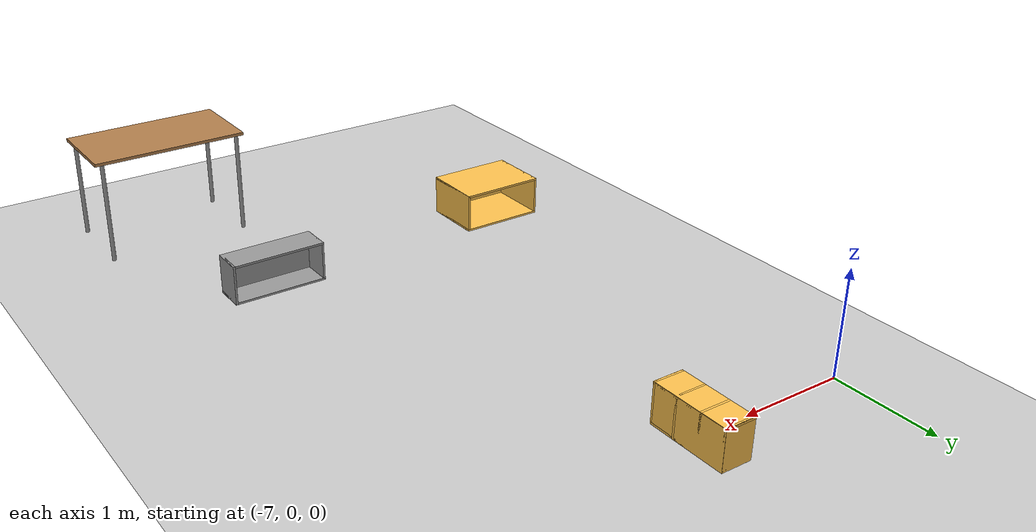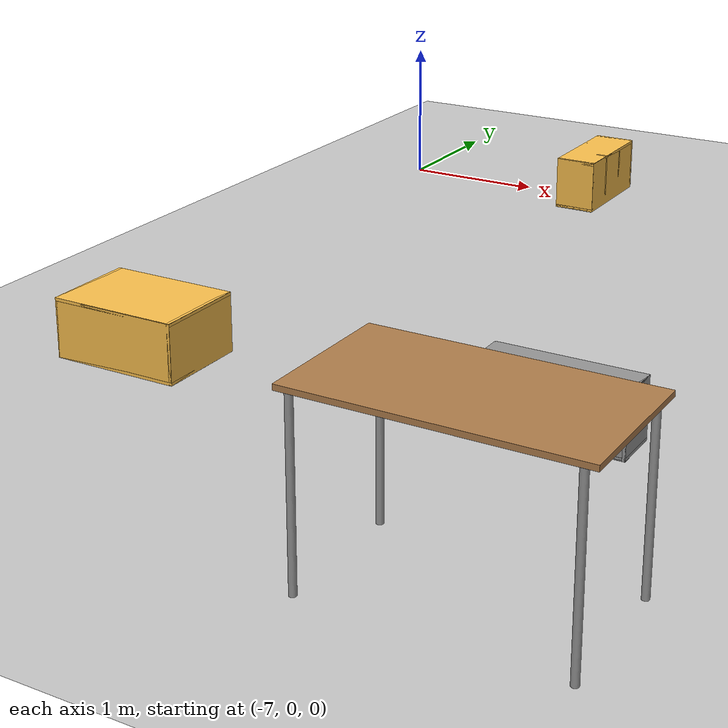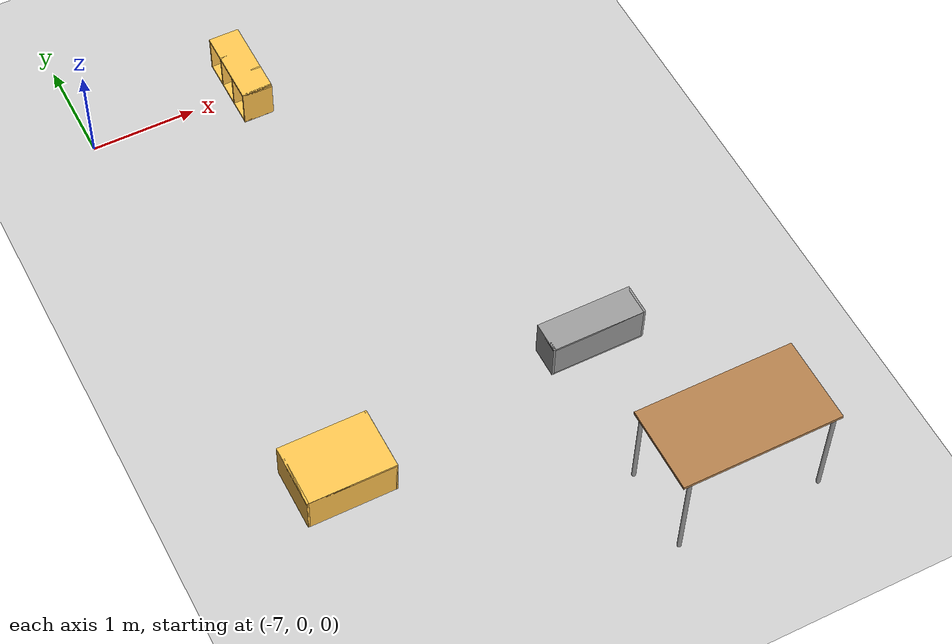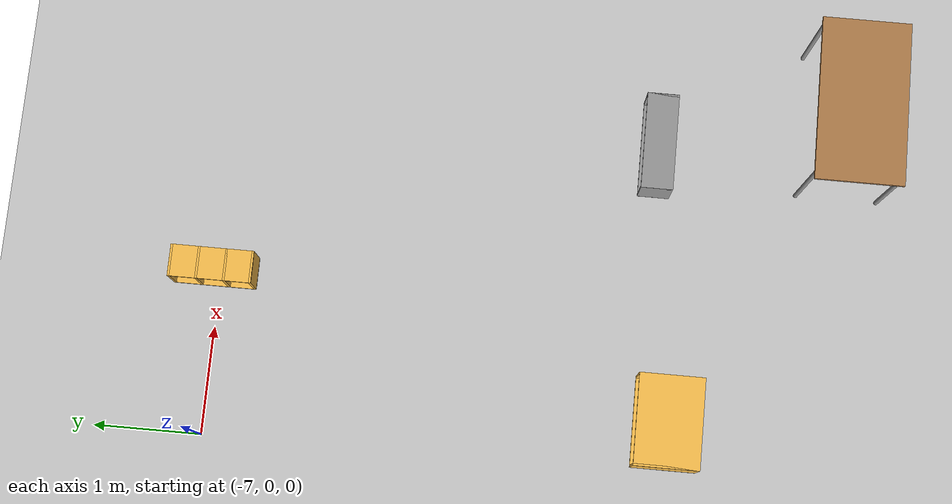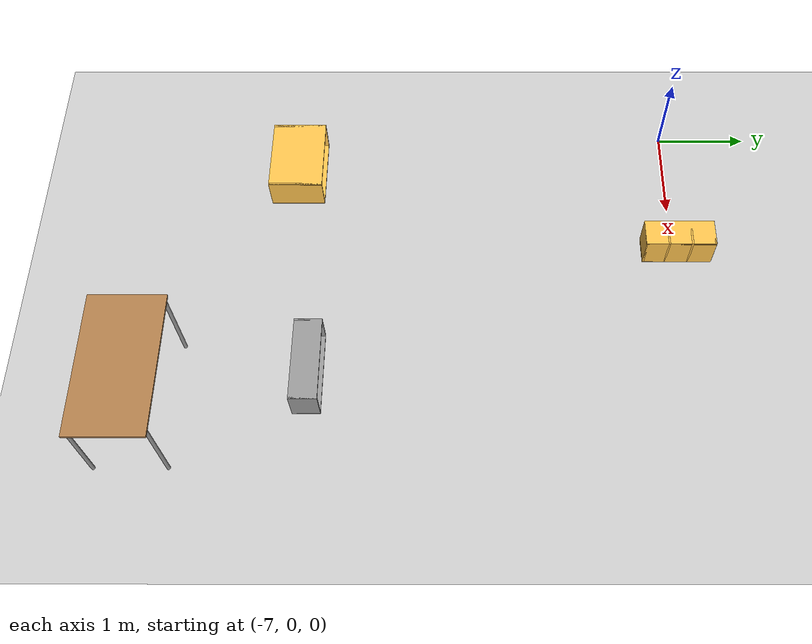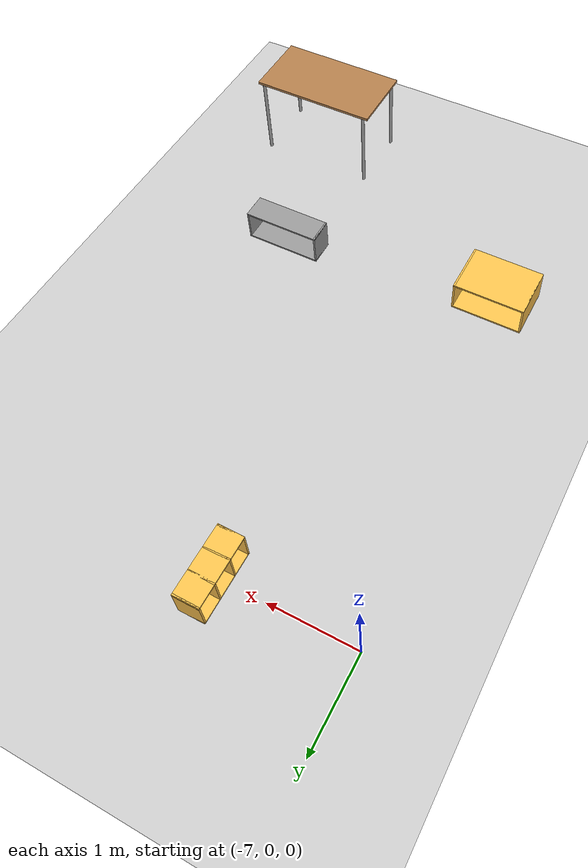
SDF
<sdf version="1.7">
 <world name="default">
  <model name="ground_plane">
   <static>1</static>
   <link name="link">
    <collision name="collision">
     <geometry><plane><normal>0 0 1</normal><size>100 100</size></plane></geometry>
     <surface>
      <contact><collide_bitmask>65535</collide_bitmask></contact>
      <friction><ode><mu>100</mu><mu2>50</mu2></ode></friction>
     </surface>
    </collision>
    <visual name="visual">
     <cast_shadows>0</cast_shadows>
     <geometry><plane><normal>0 0 1</normal><size>100 100</size></plane></geometry>
     <material>
      <script><uri>file://media/materials/scripts/gazebo.material</uri><name>Gazebo/Grey</name></script>
     </material>
    </visual>
   </link>
  </model>
  <model name="Wall_Cabinet_36x15W">
   <link name="Wall_0">
    <pose>0 0 0.01 0 -0 0</pose>
    <inertial>
     <mass>1.9796</mass>
     <inertia><ixx>0.0145</ixx><iyy>0.1511</iyy><izz>0.1367</izz><ixy>0</ixy><ixz>0</ixz><iyz>0</iyz></inertia>
    </inertial>
    <collision name="Wall_0_Collision"><geometry><box><size>0.91 0.296 0.02</size></box></geometry></collision>
    <visual name="Wall_0_Visual">
     <geometry><box><size>0.91 0.296 0.02</size></box></geometry>
     <material>
      <script><uri>file://media/materials/scripts/gazebo.material</uri><name>Gazebo/Grey</name></script>
      <ambient>1 1 1 1</ambient>
     </material>
    </visual>
   </link>
   <joint name="0_2" type="fixed">
    <pose>-0.455 0 0 0 -0 0</pose>
    <parent>Wall_2</parent>
    <child>Wall_0</child>
    <axis><xyz>0 0 1</xyz><limit><lower>-1e+16</lower><upper>1e+16</upper></limit></axis>
   </joint>
   <joint name="0_4" type="fixed">
    <pose>0.455 0 0 0 -0 0</pose>
    <parent>Wall_4</parent>
    <child>Wall_0</child>
    <axis><xyz>0 0 1</xyz><limit><lower>-1e+16</lower><upper>1e+16</upper></limit></axis>
   </joint>
   <joint name="0_8" type="fixed">
    <pose>0 -0.148 0 0 -0 0</pose>
    <parent>Wall_8</parent>
    <child>Wall_0</child>
    <axis><xyz>0 0 1</xyz><limit><lower>-1e+16</lower><upper>1e+16</upper></limit></axis>
   </joint>
   <link name="Wall_2">
    <pose>-0.445 0 0.192 0 -0 0</pose>
    <inertial>
     <mass>0.8353</mass>
     <inertia><ixx>0.0061</ixx><iyy>0.0164</iyy><izz>0.0103</izz><ixy>0</ixy><ixz>0</ixz><iyz>0</iyz></inertia>
    </inertial>
    <collision name="Wall_2_Collision"><geometry><box><size>0.02 0.296 0.384</size></box></geometry></collision>
    <visual name="Wall_2_Visual">
     <geometry><box><size>0.02 0.296 0.384</size></box></geometry>
     <material>
      <script><uri>file://media/materials/scripts/gazebo.material</uri><name>Gazebo/Grey</name></script>
      <ambient>1 1 1 1</ambient>
     </material>
    </visual>
   </link>
   <link name="Wall_4">
    <pose>0.445 0 0.192 0 -0 0</pose>
    <inertial>
     <mass>0.8353</mass>
     <inertia><ixx>0.0061</ixx><iyy>0.0164</iyy><izz>0.0103</izz><ixy>0</ixy><ixz>0</ixz><iyz>0</iyz></inertia>
    </inertial>
    <collision name="Wall_4_Collision"><geometry><box><size>0.02 0.296 0.384</size></box></geometry></collision>
    <visual name="Wall_4_Visual">
     <geometry><box><size>0.02 0.296 0.384</size></box></geometry>
     <material>
      <script><uri>file://media/materials/scripts/gazebo.material</uri><name>Gazebo/Grey</name></script>
      <ambient>1 1 1 1</ambient>
     </material>
    </visual>
   </link>
   <link name="Wall_6">
    <pose>0 0 0.374 0 -0 0</pose>
    <inertial>
     <mass>1.9796</mass>
     <inertia><ixx>0.0145</ixx><iyy>0.1511</iyy><izz>0.1367</izz><ixy>0</ixy><ixz>0</ixz><iyz>0</iyz></inertia>
    </inertial>
    <collision name="Wall_6_Collision"><geometry><box><size>0.91 0.296 0.02</size></box></geometry></collision>
    <visual name="Wall_6_Visual">
     <geometry><box><size>0.91 0.296 0.02</size></box></geometry>
     <material>
      <script><uri>file://media/materials/scripts/gazebo.material</uri><name>Gazebo/Grey</name></script>
      <ambient>1 1 1 1</ambient>
     </material>
    </visual>
   </link>
   <joint name="6_2" type="fixed">
    <pose>-0.455 0 0 0 -0 0</pose>
    <parent>Wall_2</parent>
    <child>Wall_6</child>
    <axis><xyz>0 0 1</xyz><limit><lower>-1e+16</lower><upper>1e+16</upper></limit></axis>
   </joint>
   <joint name="6_4" type="fixed">
    <pose>0.455 0 0 0 -0 0</pose>
    <parent>Wall_4</parent>
    <child>Wall_6</child>
    <axis><xyz>0 0 1</xyz><limit><lower>-1e+16</lower><upper>1e+16</upper></limit></axis>
   </joint>
   <joint name="6_8" type="fixed">
    <pose>0 -0.148 0 0 -0 0</pose>
    <parent>Wall_8</parent>
    <child>Wall_6</child>
    <axis><xyz>0 0 1</xyz><limit><lower>-1e+16</lower><upper>1e+16</upper></limit></axis>
   </joint>
   <link name="Wall_8">
    <pose>0 -0.138 0.19 0 -0 0</pose>
    <inertial>
     <mass>2.5302</mass>
     <inertia><ixx>0.0305</ixx><iyy>0.1732</iyy><izz>0.2035</izz><ixy>0</ixy><ixz>0</ixz><iyz>0</iyz></inertia>
    </inertial>
    <collision name="Wall_8_Collision"><geometry><box><size>0.906 0.02 0.38</size></box></geometry></collision>
    <visual name="Wall_8_Visual">
     <geometry><box><size>0.906 0.02 0.38</size></box></geometry>
     <material>
      <script><uri>file://media/materials/scripts/gazebo.material</uri><name>Gazebo/Grey</name></script>
      <ambient>1 1 1 1</ambient>
     </material>
    </visual>
   </link>
   <joint name="8_2" type="fixed">
    <pose>-0.453 0 0 0 -0 0</pose>
    <parent>Wall_2</parent>
    <child>Wall_8</child>
    <axis><xyz>0 1 0</xyz><limit><lower>-1e+16</lower><upper>1e+16</upper></limit></axis>
   </joint>
   <joint name="8_4" type="fixed">
    <pose>0.453 0 0 0 -0 0</pose>
    <parent>Wall_4</parent>
    <child>Wall_8</child>
    <axis><xyz>0 1 0</xyz><limit><lower>-1e+16</lower><upper>1e+16</upper></limit></axis>
   </joint>
   <static>1</static>
   <pose>-3.94097 -3.9701 0 0 -0 0</pose>
  </model>
  <model name="Wall_Cabinet_15x30">
   <pose>-5.46523 0.041721 0 0 -0 0</pose>
   <link name="Wall_0">
    <pose>0 0.374 0.192 0 -0 0</pose>
    <inertial>
     <mass>0.9882</mass>
     <inertia><ixx>0.0072</ixx><iyy>0.0194</iyy><izz>0.0122</izz><ixy>0</ixy><ixz>0</ixz><iyz>0</iyz></inertia>
    </inertial>
    <collision name="Wall_0_Collision"><geometry><box><size>0.296 0.02 0.384</size></box></geometry></collision>
    <visual name="Wall_0_Visual">
     <geometry><box><size>0.296 0.02 0.384</size></box></geometry>
     <material>
      <script><uri>file://media/materials/scripts/gazebo.material</uri><name>Gazebo/Grey</name></script>
      <ambient>1 0.764706 0.305882 1</ambient>
     </material>
    </visual>
   </link>
   <joint name="0_2" type="fixed">
    <pose>0 0 0.192 0 -0 0</pose>
    <parent>Wall_2</parent>
    <child>Wall_0</child>
    <axis><xyz>0 0 1</xyz><limit><lower>-1e+16</lower><upper>1e+16</upper></limit></axis>
   </joint>
   <joint name="0_4" type="fixed">
    <pose>0 0 -0.192 0 -0 0</pose>
    <parent>Wall_4</parent>
    <child>Wall_0</child>
    <axis><xyz>0 0 1</xyz><limit><lower>-1e+16</lower><upper>1e+16</upper></limit></axis>
   </joint>
   <joint name="0_15" type="fixed">
    <pose>0.148 0 0 0 -0 0</pose>
    <parent>Wall_15</parent>
    <child>Wall_0</child>
    <axis><xyz>1 0 0</xyz><limit><lower>-1e+16</lower><upper>1e+16</upper></limit></axis>
   </joint>
   <link name="Wall_11">
    <pose>0 -0.132768 0.192 0 -0 0</pose>
    <inertial>
     <mass>0.9882</mass>
     <inertia><ixx>0.0072</ixx><iyy>0.0194</iyy><izz>0.0122</izz><ixy>0</ixy><ixz>0</ixz><iyz>0</iyz></inertia>
    </inertial>
    <collision name="Wall_11_Collision"><geometry><box><size>0.296 0.02 0.384</size></box></geometry></collision>
    <visual name="Wall_11_Visual">
     <geometry><box><size>0.296 0.02 0.384</size></box></geometry>
     <material>
      <script><uri>file://media/materials/scripts/gazebo.material</uri><name>Gazebo/Grey</name></script>
      <ambient>1 0.764706 0.305882 1</ambient>
     </material>
    </visual>
   </link>
   <joint name="11_2" type="fixed">
    <pose>0 0 0.192 0 -0 0</pose>
    <parent>Wall_2</parent>
    <child>Wall_11</child>
    <axis><xyz>0 0 1</xyz><limit><lower>-1e+16</lower><upper>1e+16</upper></limit></axis>
   </joint>
   <joint name="11_4" type="fixed">
    <pose>0 0 -0.192 0 -0 0</pose>
    <parent>Wall_4</parent>
    <child>Wall_11</child>
    <axis><xyz>0 0 1</xyz><limit><lower>-1e+16</lower><upper>1e+16</upper></limit></axis>
   </joint>
   <joint name="11_15" type="fixed">
    <pose>0.148 0 0 0 -0 0</pose>
    <parent>Wall_15</parent>
    <child>Wall_11</child>
    <axis><xyz>1 0 0</xyz><limit><lower>-1e+16</lower><upper>1e+16</upper></limit></axis>
   </joint>
   <link name="Wall_15">
    <pose>0.138 0 0.19 0 -0 0</pose>
    <inertial>
     <mass>2.5241</mass>
     <inertia><ixx>0.0305</ixx><iyy>0.1229</iyy><izz>0.1532</izz><ixy>0</ixy><ixz>0</ixz><iyz>0</iyz></inertia>
    </inertial>
    <collision name="Wall_15_Collision"><geometry><box><size>0.02 0.764 0.38</size></box></geometry></collision>
    <visual name="Wall_15_Visual">
     <geometry><box><size>0.02 0.764 0.38</size></box></geometry>
     <material>
      <script><uri>file://media/materials/scripts/gazebo.material</uri><name>Gazebo/Grey</name></script>
      <ambient>1 0.764706 0.305882 1</ambient>
     </material>
    </visual>
   </link>
   <joint name="15_2" type="fixed">
    <pose>0 0 0.19 0 -0 0</pose>
    <parent>Wall_2</parent>
    <child>Wall_15</child>
    <axis><xyz>0 0 1</xyz><limit><lower>-1e+16</lower><upper>1e+16</upper></limit></axis>
   </joint>
   <joint name="15_4" type="fixed">
    <pose>0 0 -0.19 0 -0 0</pose>
    <parent>Wall_4</parent>
    <child>Wall_15</child>
    <axis><xyz>0 0 1</xyz><limit><lower>-1e+16</lower><upper>1e+16</upper></limit></axis>
   </joint>
   <link name="Wall_2">
    <pose>0 0 0.374 0 -0 0</pose>
    <inertial>
     <mass>1.9765</mass>
     <inertia><ixx>0.0145</ixx><iyy>0.1116</iyy><izz>0.0972</izz><ixy>0</ixy><ixz>0</ixz><iyz>0</iyz></inertia>
    </inertial>
    <collision name="Wall_2_Collision"><geometry><box><size>0.296 0.768 0.02</size></box></geometry></collision>
    <visual name="Wall_2_Visual">
     <geometry><box><size>0.296 0.768 0.02</size></box></geometry>
     <material>
      <script><uri>file://media/materials/scripts/gazebo.material</uri><name>Gazebo/Grey</name></script>
      <ambient>1 0.764706 0.305882 1</ambient>
     </material>
    </visual>
   </link>
   <link name="Wall_4">
    <pose>0 0 0.01 0 -0 0</pose>
    <inertial>
     <mass>1.9765</mass>
     <inertia><ixx>0.0145</ixx><iyy>0.1116</iyy><izz>0.0972</izz><ixy>0</ixy><ixz>0</ixz><iyz>0</iyz></inertia>
    </inertial>
    <collision name="Wall_4_Collision"><geometry><box><size>0.296 0.768 0.02</size></box></geometry></collision>
    <visual name="Wall_4_Visual">
     <geometry><box><size>0.296 0.768 0.02</size></box></geometry>
     <material>
      <script><uri>file://media/materials/scripts/gazebo.material</uri><name>Gazebo/Grey</name></script>
      <ambient>1 0.764706 0.305882 1</ambient>
     </material>
    </visual>
    <pose>-0.181124 0 0 0 0 -1.5708</pose>
   </link>
   <link name="Wall_6">
    <pose>0 -0.374 0.192 0 -0 0</pose>
    <inertial>
     <mass>0.9882</mass>
     <inertia><ixx>0.0072</ixx><iyy>0.0194</iyy><izz>0.0122</izz><ixy>0</ixy><ixz>0</ixz><iyz>0</iyz></inertia>
    </inertial>
    <collision name="Wall_6_Collision"><geometry><box><size>0.296 0.02 0.384</size></box></geometry></collision>
    <visual name="Wall_6_Visual">
     <geometry><box><size>0.296 0.02 0.384</size></box></geometry>
     <material>
      <script><uri>file://media/materials/scripts/gazebo.material</uri><name>Gazebo/Grey</name></script>
      <ambient>1 0.764706 0.305882 1</ambient>
     </material>
    </visual>
   </link>
   <joint name="6_2" type="fixed">
    <pose>0 0 0.192 0 -0 0</pose>
    <parent>Wall_2</parent>
    <child>Wall_6</child>
    <axis><xyz>0 0 1</xyz><limit><lower>-1e+16</lower><upper>1e+16</upper></limit></axis>
   </joint>
   <joint name="6_4" type="fixed">
    <pose>0 0 -0.192 0 -0 0</pose>
    <parent>Wall_4</parent>
    <child>Wall_6</child>
    <axis><xyz>0 0 1</xyz><limit><lower>-1e+16</lower><upper>1e+16</upper></limit></axis>
   </joint>
   <joint name="6_15" type="fixed">
    <pose>0.148 0 0 0 -0 0</pose>
    <parent>Wall_15</parent>
    <child>Wall_6</child>
    <axis><xyz>1 0 0</xyz><limit><lower>-1e+16</lower><upper>1e+16</upper></limit></axis>
   </joint>
   <link name="Wall_8">
    <pose>0 0.120833 0.192 0 -0 0</pose>
    <inertial>
     <mass>0.9882</mass>
     <inertia><ixx>0.0072</ixx><iyy>0.0194</iyy><izz>0.0122</izz><ixy>0</ixy><ixz>0</ixz><iyz>0</iyz></inertia>
    </inertial>
    <collision name="Wall_8_Collision"><geometry><box><size>0.296 0.02 0.384</size></box></geometry></collision>
    <visual name="Wall_8_Visual">
     <geometry><box><size>0.296 0.02 0.384</size></box></geometry>
     <material>
      <script><uri>file://media/materials/scripts/gazebo.material</uri><name>Gazebo/Grey</name></script>
      <ambient>1 0.764706 0.305882 1</ambient>
     </material>
    </visual>
   </link>
   <joint name="8_2" type="fixed">
    <pose>0 0 0.192 0 -0 0</pose>
    <parent>Wall_2</parent>
    <child>Wall_8</child>
    <axis><xyz>0 0 1</xyz><limit><lower>-1e+16</lower><upper>1e+16</upper></limit></axis>
   </joint>
   <joint name="8_4" type="fixed">
    <pose>0 0 -0.192 0 -0 0</pose>
    <parent>Wall_4</parent>
    <child>Wall_8</child>
    <axis><xyz>0 0 1</xyz><limit><lower>-1e+16</lower><upper>1e+16</upper></limit></axis>
   </joint>
   <joint name="8_15" type="fixed">
    <pose>0.148 0 0 0 -0 0</pose>
    <parent>Wall_15</parent>
    <child>Wall_8</child>
    <axis><xyz>1 0 0</xyz><limit><lower>-1e+16</lower><upper>1e+16</upper></limit></axis>
   </joint>
   <static>1</static>
  </model>
  <model name="Fridge_Cabinet_33x15">
   <link name="Wall_17">
    <pose>0 0 0.01 0 -0 0</pose>
    <inertial>
     <mass>4.8627</mass>
     <inertia><ixx>0.146</ixx><iyy>0.4318</iyy><izz>0.2861</izz><ixy>0</ixy><ixz>0</ixz><iyz>0</iyz></inertia>
    </inertial>
    <collision name="Wall_17_Collision"><geometry><box><size>0.84 0.6 0.02</size></box></geometry></collision>
    <visual name="Wall_17_Visual">
     <geometry><box><size>0.84 0.6 0.02</size></box></geometry>
     <material>
      <script><uri>file://media/materials/scripts/gazebo.material</uri><name>Gazebo/Grey</name></script>
      <ambient>1 0.764706 0.305882 1</ambient>
     </material>
    </visual>
   </link>
   <joint name="17_21" type="fixed">
    <pose>0.42 0 0 0 -0 0</pose>
    <parent>Wall_21</parent>
    <child>Wall_17</child>
    <axis><xyz>1 0 0</xyz><limit><lower>-1e+16</lower><upper>1e+16</upper></limit></axis>
   </joint>
   <joint name="17_19" type="fixed">
    <pose>-0.42 0 0 0 -0 0</pose>
    <parent>Wall_19</parent>
    <child>Wall_17</child>
    <axis><xyz>1 0 0</xyz><limit><lower>-1e+16</lower><upper>1e+16</upper></limit></axis>
   </joint>
   <joint name="17_25" type="fixed">
    <pose>0 -0.3 0 0 -0 0</pose>
    <parent>Wall_25</parent>
    <child>Wall_17</child>
    <axis><xyz>0 1 0</xyz><limit><lower>-1e+16</lower><upper>1e+16</upper></limit></axis>
   </joint>
   <link name="Wall_19">
    <pose>-0.41 0 0.192 0 -0 0</pose>
    <inertial>
     <mass>2.223</mass>
     <inertia><ixx>0.0668</ixx><iyy>0.094</iyy><izz>0.0274</izz><ixy>0</ixy><ixz>0</ixz><iyz>0</iyz></inertia>
    </inertial>
    <collision name="Wall_19_Collision"><geometry><box><size>0.02 0.6 0.384</size></box></geometry></collision>
    <visual name="Wall_19_Visual">
     <geometry><box><size>0.02 0.6 0.384</size></box></geometry>
     <material>
      <script><uri>file://media/materials/scripts/gazebo.material</uri><name>Gazebo/Grey</name></script>
      <ambient>1 0.764706 0.305882 1</ambient>
     </material>
    </visual>
   </link>
   <link name="Wall_21">
    <pose>0.41 0 0.192 0 -0 0</pose>
    <inertial>
     <mass>2.223</mass>
     <inertia><ixx>0.0668</ixx><iyy>0.094</iyy><izz>0.0274</izz><ixy>0</ixy><ixz>0</ixz><iyz>0</iyz></inertia>
    </inertial>
    <collision name="Wall_21_Collision"><geometry><box><size>0.02 0.6 0.384</size></box></geometry></collision>
    <visual name="Wall_21_Visual">
     <geometry><box><size>0.02 0.6 0.384</size></box></geometry>
     <material>
      <script><uri>file://media/materials/scripts/gazebo.material</uri><name>Gazebo/Grey</name></script>
      <ambient>1 0.764706 0.305882 1</ambient>
     </material>
    </visual>
   </link>
   <link name="Wall_23">
    <pose>0 0 0.374 0 -0 0</pose>
    <inertial>
     <mass>4.8627</mass>
     <inertia><ixx>0.146</ixx><iyy>0.4318</iyy><izz>0.2861</izz><ixy>0</ixy><ixz>0</ixz><iyz>0</iyz></inertia>
    </inertial>
    <collision name="Wall_23_Collision"><geometry><box><size>0.84 0.6 0.02</size></box></geometry></collision>
    <visual name="Wall_23_Visual">
     <geometry><box><size>0.84 0.6 0.02</size></box></geometry>
     <material>
      <script><uri>file://media/materials/scripts/gazebo.material</uri><name>Gazebo/Grey</name></script>
      <ambient>1 0.764706 0.305882 1</ambient>
     </material>
    </visual>
   </link>
   <joint name="23_21" type="fixed">
    <pose>0.42 0 0 0 -0 0</pose>
    <parent>Wall_21</parent>
    <child>Wall_23</child>
    <axis><xyz>0 0 1</xyz><limit><lower>-1e+16</lower><upper>1e+16</upper></limit></axis>
   </joint>
   <joint name="23_19" type="fixed">
    <pose>-0.42 0 0 0 -0 0</pose>
    <parent>Wall_19</parent>
    <child>Wall_23</child>
    <axis><xyz>0 0 1</xyz><limit><lower>-1e+16</lower><upper>1e+16</upper></limit></axis>
   </joint>
   <joint name="23_25" type="fixed">
    <pose>0 -0.3 0 0 -0 0</pose>
    <parent>Wall_25</parent>
    <child>Wall_23</child>
    <axis><xyz>0 0 1</xyz><limit><lower>-1e+16</lower><upper>1e+16</upper></limit></axis>
   </joint>
   <link name="Wall_25">
    <pose>0 -0.29 0.19 0 -0 0</pose>
    <inertial>
     <mass>3.0651</mass>
     <inertia><ixx>0.037</ixx><iyy>0.1786</iyy><izz>0.2154</izz><ixy>0</ixy><ixz>0</ixz><iyz>0</iyz></inertia>
    </inertial>
    <collision name="Wall_25_Collision"><geometry><box><size>0.836 0.02 0.38</size></box></geometry></collision>
    <visual name="Wall_25_Visual">
     <geometry><box><size>0.836 0.02 0.38</size></box></geometry>
     <material>
      <script><uri>file://media/materials/scripts/gazebo.material</uri><name>Gazebo/Grey</name></script>
      <ambient>1 0.764706 0.305882 1</ambient>
     </material>
    </visual>
   </link>
   <joint name="25_21" type="fixed">
    <pose>0.42 0 0 0 -0 0</pose>
    <parent>Wall_21</parent>
    <child>Wall_25</child>
    <axis><xyz>0 1 0</xyz><limit><lower>-1e+16</lower><upper>1e+16</upper></limit></axis>
   </joint>
   <joint name="25_19" type="fixed">
    <pose>-0.42 0 0 0 -0 0</pose>
    <parent>Wall_19</parent>
    <child>Wall_25</child>
    <axis><xyz>0 1 0</xyz><limit><lower>-1e+16</lower><upper>1e+16</upper></limit></axis>
   </joint>
   <static>1</static>
   <pose>-6.52022 -4.23595 0 0 -0 0</pose>
  </model>
  <model name="table">
   <static>1</static>
   <link name="link">
    <collision name="surface">
     <pose>0 0 1 0 -0 0</pose>
     <geometry><box><size>1.5 0.8 0.03</size></box></geometry>
     <surface><friction><ode><mu>0.6</mu><mu2>0.6</mu2></ode></friction></surface>
    </collision>
    <visual name="visual1">
     <pose>0 0 1 0 -0 0</pose>
     <geometry><box><size>1.5 0.8 0.03</size></box></geometry>
     <material>
      <script><uri>file://media/materials/scripts/gazebo.material</uri><name>Gazebo/Wood</name></script>
     </material>
    </visual>
    <collision name="front_left_leg">
     <pose>0.68 0.38 0.5 0 -0 0</pose>
     <geometry><cylinder><radius>0.02</radius><length>1</length></cylinder></geometry>
    </collision>
    <visual name="front_left_leg">
     <pose>0.68 0.38 0.5 0 -0 0</pose>
     <geometry><cylinder><radius>0.02</radius><length>1</length></cylinder></geometry>
     <material>
      <script><uri>file://media/materials/scripts/gazebo.material</uri><name>Gazebo/Grey</name></script>
     </material>
    </visual>
    <collision name="front_right_leg">
     <pose>0.68 -0.38 0.5 0 -0 0</pose>
     <geometry><cylinder><radius>0.02</radius><length>1</length></cylinder></geometry>
    </collision>
    <visual name="front_right_leg">
     <pose>0.68 -0.38 0.5 0 -0 0</pose>
     <geometry><cylinder><radius>0.02</radius><length>1</length></cylinder></geometry>
     <material>
      <script><uri>file://media/materials/scripts/gazebo.material</uri><name>Gazebo/Grey</name></script>
     </material>
    </visual>
    <collision name="back_right_leg">
     <pose>-0.68 -0.38 0.5 0 -0 0</pose>
     <geometry><cylinder><radius>0.02</radius><length>1</length></cylinder></geometry>
    </collision>
    <visual name="back_right_leg">
     <pose>-0.68 -0.38 0.5 0 -0 0</pose>
     <geometry><cylinder><radius>0.02</radius><length>1</length></cylinder></geometry>
     <material>
      <script><uri>file://media/materials/scripts/gazebo.material</uri><name>Gazebo/Grey</name></script>
     </material>
    </visual>
    <collision name="back_left_leg">
     <pose>-0.68 0.38 0.5 0 -0 0</pose>
     <geometry><cylinder><radius>0.02</radius><length>1</length></cylinder></geometry>
    </collision>
    <visual name="back_left_leg">
     <pose>-0.68 0.38 0.5 0 -0 0</pose>
     <geometry><cylinder><radius>0.02</radius><length>1</length></cylinder></geometry>
     <material>
      <script><uri>file://media/materials/scripts/gazebo.material</uri><name>Gazebo/Grey</name></script>
     </material>
    </visual>
   </link>
   <pose>-3.57779 -5.69107 0 0 -0 0</pose>
  </model>
 </world>
</sdf>
